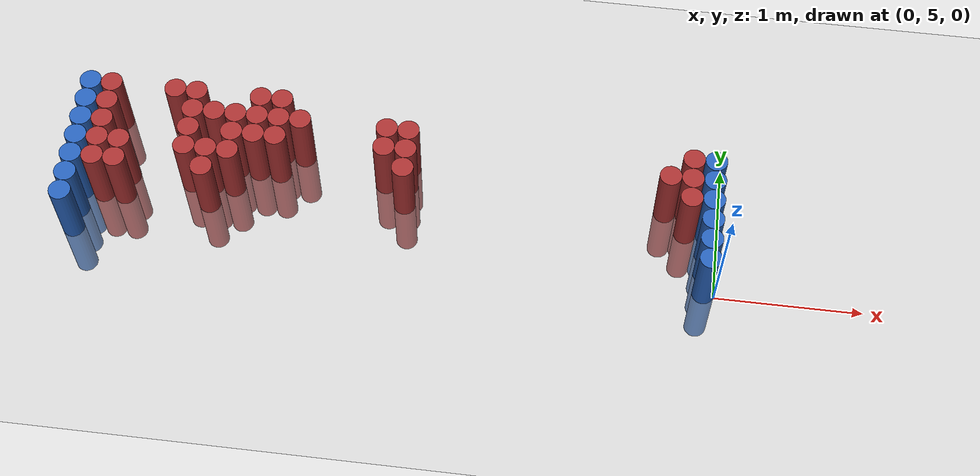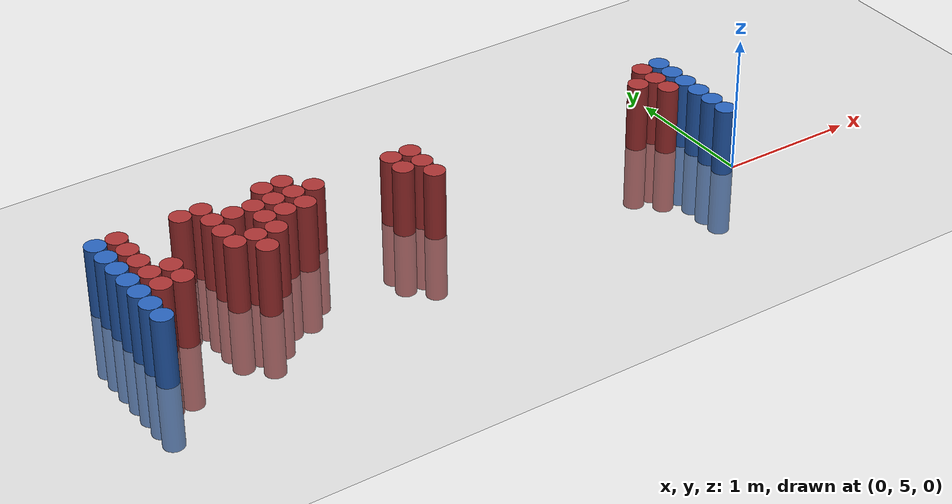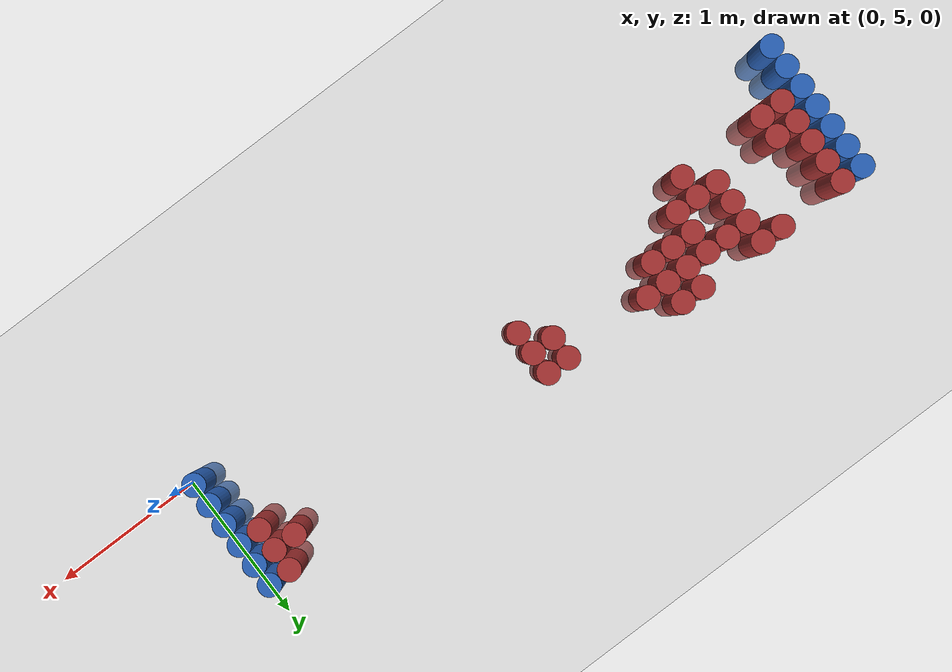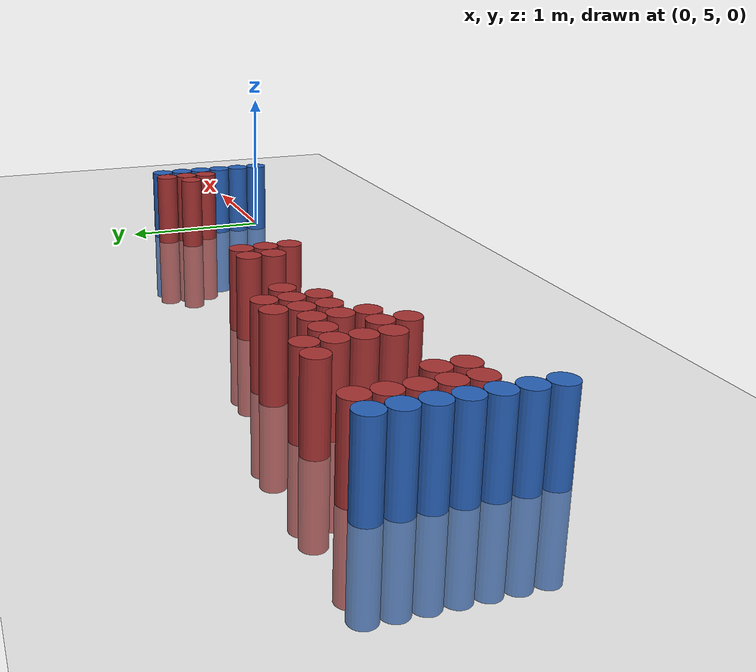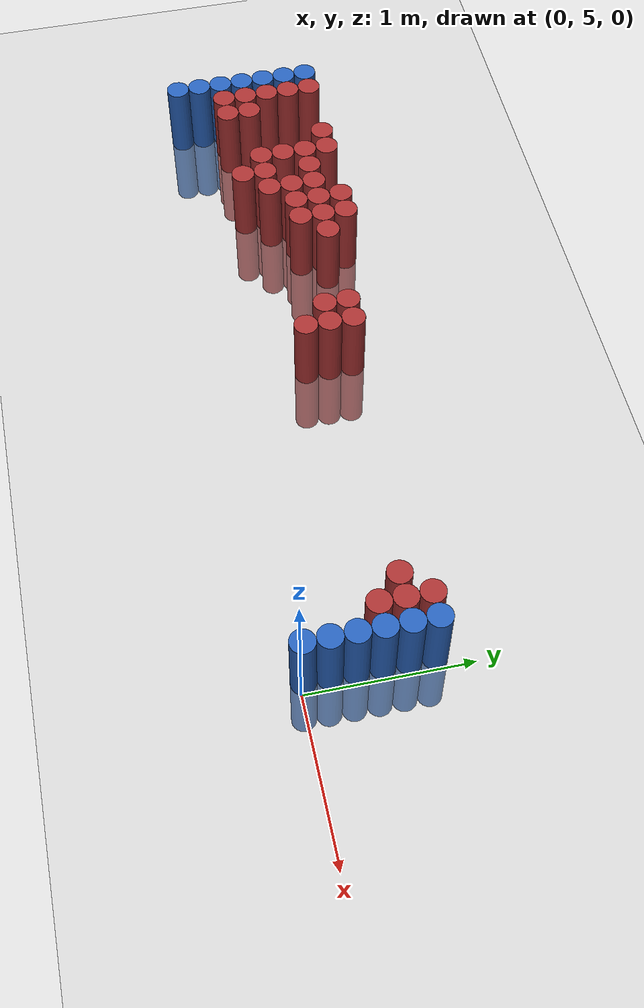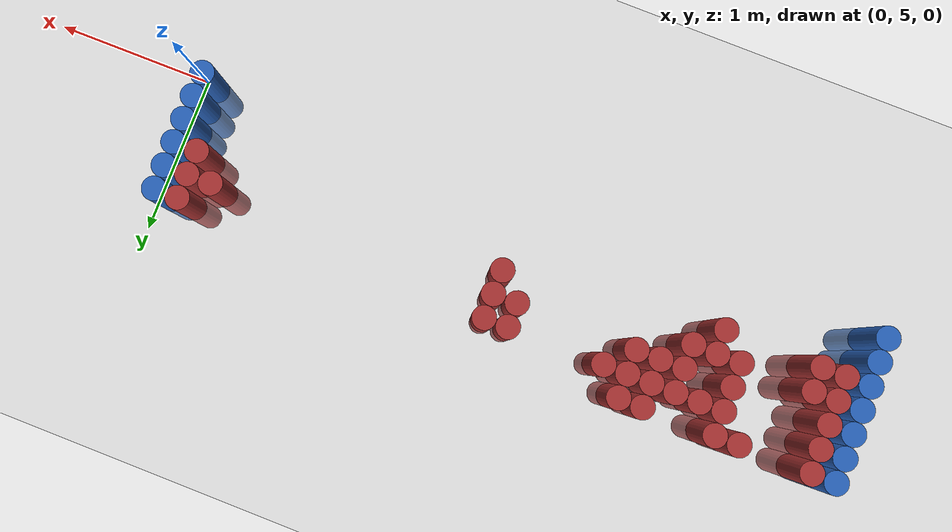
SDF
<sdf version="1.6">
 <world name="default">
  <model name="ground_plane">
   <static>1</static>
   <link name="link">
    <collision name="collision">
     <geometry><plane><normal>0 0 1</normal><size>100 100</size></plane></geometry>
     <surface><friction><ode><mu>100</mu><mu2>50</mu2></ode></friction></surface>
    </collision>
    <visual name="visual">
     <cast_shadows>0</cast_shadows>
     <geometry><plane><normal>0 0 1</normal><size>100 100</size></plane></geometry>
     <material>
      <script><uri>file://media/materials/scripts/gazebo.material</uri><name>Gazebo/Grey</name></script>
     </material>
    </visual>
   </link>
  </model>
  <model name="unit_cylinder_94">
   <static>1</static>
   <pose>-0.075000 5.025000 0.000000 0.000000 0.000000 0.000000</pose>
   <link name="link">
    <inertial>
     <mass>1</mass>
     <inertia><ixx>0.145833</ixx><ixy>0</ixy><ixz>0</ixz><iyy>0.145833</iyy><iyz>0</iyz><izz>0.125</izz></inertia>
    </inertial>
    <collision name="collision">
     <geometry><cylinder><radius>0.075000</radius><length>1</length></cylinder></geometry>
    </collision>
    <visual name="visual">
     <geometry><cylinder><radius>0.075000</radius><length>1</length></cylinder></geometry>
     <material>
      <ambient>0.152000 0.379000 0.720000 1</ambient>
      <diffuse>0.152000 0.379000 0.720000 1</diffuse>
     </material>
     <material>
      <script><name>Gazebo/Grey</name><uri>file://media/materials/scripts/gazebo.material</uri></script>
     </material>
    </visual>
   </link>
  </model>
  <model name="unit_cylinder_95">
   <static>1</static>
   <pose>-4.425000 5.025000 0.000000 0.000000 0.000000 0.000000</pose>
   <link name="link">
    <inertial>
     <mass>1</mass>
     <inertia><ixx>0.145833</ixx><ixy>0</ixy><ixz>0</ixz><iyy>0.145833</iyy><iyz>0</iyz><izz>0.125</izz></inertia>
    </inertial>
    <collision name="collision">
     <geometry><cylinder><radius>0.075000</radius><length>1</length></cylinder></geometry>
    </collision>
    <visual name="visual">
     <geometry><cylinder><radius>0.075000</radius><length>1</length></cylinder></geometry>
     <material>
      <ambient>0.152000 0.379000 0.720000 1</ambient>
      <diffuse>0.152000 0.379000 0.720000 1</diffuse>
     </material>
     <material>
      <script><name>Gazebo/Grey</name><uri>file://media/materials/scripts/gazebo.material</uri></script>
     </material>
    </visual>
   </link>
  </model>
  <model name="unit_cylinder_96">
   <static>1</static>
   <pose>-4.425000 5.175000 0.000000 0.000000 0.000000 0.000000</pose>
   <link name="link">
    <inertial>
     <mass>1</mass>
     <inertia><ixx>0.145833</ixx><ixy>0</ixy><ixz>0</ixz><iyy>0.145833</iyy><iyz>0</iyz><izz>0.125</izz></inertia>
    </inertial>
    <collision name="collision">
     <geometry><cylinder><radius>0.075000</radius><length>1</length></cylinder></geometry>
    </collision>
    <visual name="visual">
     <geometry><cylinder><radius>0.075000</radius><length>1</length></cylinder></geometry>
     <material>
      <ambient>0.152000 0.379000 0.720000 1</ambient>
      <diffuse>0.152000 0.379000 0.720000 1</diffuse>
     </material>
     <material>
      <script><name>Gazebo/Grey</name><uri>file://media/materials/scripts/gazebo.material</uri></script>
     </material>
    </visual>
   </link>
  </model>
  <model name="unit_cylinder_97">
   <static>1</static>
   <pose>-4.425000 5.325000 0.000000 0.000000 0.000000 0.000000</pose>
   <link name="link">
    <inertial>
     <mass>1</mass>
     <inertia><ixx>0.145833</ixx><ixy>0</ixy><ixz>0</ixz><iyy>0.145833</iyy><iyz>0</iyz><izz>0.125</izz></inertia>
    </inertial>
    <collision name="collision">
     <geometry><cylinder><radius>0.075000</radius><length>1</length></cylinder></geometry>
    </collision>
    <visual name="visual">
     <geometry><cylinder><radius>0.075000</radius><length>1</length></cylinder></geometry>
     <material>
      <ambient>0.152000 0.379000 0.720000 1</ambient>
      <diffuse>0.152000 0.379000 0.720000 1</diffuse>
     </material>
     <material>
      <script><name>Gazebo/Grey</name><uri>file://media/materials/scripts/gazebo.material</uri></script>
     </material>
    </visual>
   </link>
  </model>
  <model name="unit_cylinder_98">
   <static>1</static>
   <pose>-4.425000 5.475000 0.000000 0.000000 0.000000 0.000000</pose>
   <link name="link">
    <inertial>
     <mass>1</mass>
     <inertia><ixx>0.145833</ixx><ixy>0</ixy><ixz>0</ixz><iyy>0.145833</iyy><iyz>0</iyz><izz>0.125</izz></inertia>
    </inertial>
    <collision name="collision">
     <geometry><cylinder><radius>0.075000</radius><length>1</length></cylinder></geometry>
    </collision>
    <visual name="visual">
     <geometry><cylinder><radius>0.075000</radius><length>1</length></cylinder></geometry>
     <material>
      <ambient>0.152000 0.379000 0.720000 1</ambient>
      <diffuse>0.152000 0.379000 0.720000 1</diffuse>
     </material>
     <material>
      <script><name>Gazebo/Grey</name><uri>file://media/materials/scripts/gazebo.material</uri></script>
     </material>
    </visual>
   </link>
  </model>
  <model name="unit_cylinder_99">
   <static>1</static>
   <pose>-4.425000 5.625000 0.000000 0.000000 0.000000 0.000000</pose>
   <link name="link">
    <inertial>
     <mass>1</mass>
     <inertia><ixx>0.145833</ixx><ixy>0</ixy><ixz>0</ixz><iyy>0.145833</iyy><iyz>0</iyz><izz>0.125</izz></inertia>
    </inertial>
    <collision name="collision">
     <geometry><cylinder><radius>0.075000</radius><length>1</length></cylinder></geometry>
    </collision>
    <visual name="visual">
     <geometry><cylinder><radius>0.075000</radius><length>1</length></cylinder></geometry>
     <material>
      <ambient>0.152000 0.379000 0.720000 1</ambient>
      <diffuse>0.152000 0.379000 0.720000 1</diffuse>
     </material>
     <material>
      <script><name>Gazebo/Grey</name><uri>file://media/materials/scripts/gazebo.material</uri></script>
     </material>
    </visual>
   </link>
  </model>
  <model name="unit_cylinder_100">
   <static>1</static>
   <pose>-4.425000 5.775000 0.000000 0.000000 0.000000 0.000000</pose>
   <link name="link">
    <inertial>
     <mass>1</mass>
     <inertia><ixx>0.145833</ixx><ixy>0</ixy><ixz>0</ixz><iyy>0.145833</iyy><iyz>0</iyz><izz>0.125</izz></inertia>
    </inertial>
    <collision name="collision">
     <geometry><cylinder><radius>0.075000</radius><length>1</length></cylinder></geometry>
    </collision>
    <visual name="visual">
     <geometry><cylinder><radius>0.075000</radius><length>1</length></cylinder></geometry>
     <material>
      <ambient>0.152000 0.379000 0.720000 1</ambient>
      <diffuse>0.152000 0.379000 0.720000 1</diffuse>
     </material>
     <material>
      <script><name>Gazebo/Grey</name><uri>file://media/materials/scripts/gazebo.material</uri></script>
     </material>
    </visual>
   </link>
  </model>
  <model name="unit_cylinder_101">
   <static>1</static>
   <pose>-4.425000 5.925000 0.000000 0.000000 0.000000 0.000000</pose>
   <link name="link">
    <inertial>
     <mass>1</mass>
     <inertia><ixx>0.145833</ixx><ixy>0</ixy><ixz>0</ixz><iyy>0.145833</iyy><iyz>0</iyz><izz>0.125</izz></inertia>
    </inertial>
    <collision name="collision">
     <geometry><cylinder><radius>0.075000</radius><length>1</length></cylinder></geometry>
    </collision>
    <visual name="visual">
     <geometry><cylinder><radius>0.075000</radius><length>1</length></cylinder></geometry>
     <material>
      <ambient>0.152000 0.379000 0.720000 1</ambient>
      <diffuse>0.152000 0.379000 0.720000 1</diffuse>
     </material>
     <material>
      <script><name>Gazebo/Grey</name><uri>file://media/materials/scripts/gazebo.material</uri></script>
     </material>
    </visual>
   </link>
  </model>
  <model name="unit_cylinder_126">
   <static>1</static>
   <pose>-4.275000 5.325000 0.000000 0.000000 0.000000 0.000000</pose>
   <link name="link">
    <inertial>
     <mass>1</mass>
     <inertia><ixx>0.145833</ixx><ixy>0</ixy><ixz>0</ixz><iyy>0.145833</iyy><iyz>0</iyz><izz>0.125</izz></inertia>
    </inertial>
    <collision name="collision">
     <geometry><cylinder><radius>0.075000</radius><length>1</length></cylinder></geometry>
    </collision>
    <visual name="visual">
     <geometry><cylinder><radius>0.075000</radius><length>1</length></cylinder></geometry>
     <material>
      <ambient>0.648000 0.192000 0.192000 1</ambient>
      <diffuse>0.648000 0.192000 0.192000 1</diffuse>
     </material>
     <material>
      <script><name>Gazebo/Grey</name><uri>file://media/materials/scripts/gazebo.material</uri></script>
     </material>
    </visual>
   </link>
  </model>
  <model name="unit_cylinder_127">
   <static>1</static>
   <pose>-4.275000 5.475000 0.000000 0.000000 0.000000 0.000000</pose>
   <link name="link">
    <inertial>
     <mass>1</mass>
     <inertia><ixx>0.145833</ixx><ixy>0</ixy><ixz>0</ixz><iyy>0.145833</iyy><iyz>0</iyz><izz>0.125</izz></inertia>
    </inertial>
    <collision name="collision">
     <geometry><cylinder><radius>0.075000</radius><length>1</length></cylinder></geometry>
    </collision>
    <visual name="visual">
     <geometry><cylinder><radius>0.075000</radius><length>1</length></cylinder></geometry>
     <material>
      <ambient>0.648000 0.192000 0.192000 1</ambient>
      <diffuse>0.648000 0.192000 0.192000 1</diffuse>
     </material>
     <material>
      <script><name>Gazebo/Grey</name><uri>file://media/materials/scripts/gazebo.material</uri></script>
     </material>
    </visual>
   </link>
  </model>
  <model name="unit_cylinder_128">
   <static>1</static>
   <pose>-4.275000 5.625000 0.000000 0.000000 0.000000 0.000000</pose>
   <link name="link">
    <inertial>
     <mass>1</mass>
     <inertia><ixx>0.145833</ixx><ixy>0</ixy><ixz>0</ixz><iyy>0.145833</iyy><iyz>0</iyz><izz>0.125</izz></inertia>
    </inertial>
    <collision name="collision">
     <geometry><cylinder><radius>0.075000</radius><length>1</length></cylinder></geometry>
    </collision>
    <visual name="visual">
     <geometry><cylinder><radius>0.075000</radius><length>1</length></cylinder></geometry>
     <material>
      <ambient>0.648000 0.192000 0.192000 1</ambient>
      <diffuse>0.648000 0.192000 0.192000 1</diffuse>
     </material>
     <material>
      <script><name>Gazebo/Grey</name><uri>file://media/materials/scripts/gazebo.material</uri></script>
     </material>
    </visual>
   </link>
  </model>
  <model name="unit_cylinder_129">
   <static>1</static>
   <pose>-4.275000 5.775000 0.000000 0.000000 0.000000 0.000000</pose>
   <link name="link">
    <inertial>
     <mass>1</mass>
     <inertia><ixx>0.145833</ixx><ixy>0</ixy><ixz>0</ixz><iyy>0.145833</iyy><iyz>0</iyz><izz>0.125</izz></inertia>
    </inertial>
    <collision name="collision">
     <geometry><cylinder><radius>0.075000</radius><length>1</length></cylinder></geometry>
    </collision>
    <visual name="visual">
     <geometry><cylinder><radius>0.075000</radius><length>1</length></cylinder></geometry>
     <material>
      <ambient>0.648000 0.192000 0.192000 1</ambient>
      <diffuse>0.648000 0.192000 0.192000 1</diffuse>
     </material>
     <material>
      <script><name>Gazebo/Grey</name><uri>file://media/materials/scripts/gazebo.material</uri></script>
     </material>
    </visual>
   </link>
  </model>
  <model name="unit_cylinder_130">
   <static>1</static>
   <pose>-4.275000 5.925000 0.000000 0.000000 0.000000 0.000000</pose>
   <link name="link">
    <inertial>
     <mass>1</mass>
     <inertia><ixx>0.145833</ixx><ixy>0</ixy><ixz>0</ixz><iyy>0.145833</iyy><iyz>0</iyz><izz>0.125</izz></inertia>
    </inertial>
    <collision name="collision">
     <geometry><cylinder><radius>0.075000</radius><length>1</length></cylinder></geometry>
    </collision>
    <visual name="visual">
     <geometry><cylinder><radius>0.075000</radius><length>1</length></cylinder></geometry>
     <material>
      <ambient>0.648000 0.192000 0.192000 1</ambient>
      <diffuse>0.648000 0.192000 0.192000 1</diffuse>
     </material>
     <material>
      <script><name>Gazebo/Grey</name><uri>file://media/materials/scripts/gazebo.material</uri></script>
     </material>
    </visual>
   </link>
  </model>
  <model name="unit_cylinder_147">
   <static>1</static>
   <pose>-4.125000 5.325000 0.000000 0.000000 0.000000 0.000000</pose>
   <link name="link">
    <inertial>
     <mass>1</mass>
     <inertia><ixx>0.145833</ixx><ixy>0</ixy><ixz>0</ixz><iyy>0.145833</iyy><iyz>0</iyz><izz>0.125</izz></inertia>
    </inertial>
    <collision name="collision">
     <geometry><cylinder><radius>0.075000</radius><length>1</length></cylinder></geometry>
    </collision>
    <visual name="visual">
     <geometry><cylinder><radius>0.075000</radius><length>1</length></cylinder></geometry>
     <material>
      <ambient>0.648000 0.192000 0.192000 1</ambient>
      <diffuse>0.648000 0.192000 0.192000 1</diffuse>
     </material>
     <material>
      <script><name>Gazebo/Grey</name><uri>file://media/materials/scripts/gazebo.material</uri></script>
     </material>
    </visual>
   </link>
  </model>
  <model name="unit_cylinder_148">
   <static>1</static>
   <pose>-4.125000 5.475000 0.000000 0.000000 0.000000 0.000000</pose>
   <link name="link">
    <inertial>
     <mass>1</mass>
     <inertia><ixx>0.145833</ixx><ixy>0</ixy><ixz>0</ixz><iyy>0.145833</iyy><iyz>0</iyz><izz>0.125</izz></inertia>
    </inertial>
    <collision name="collision">
     <geometry><cylinder><radius>0.075000</radius><length>1</length></cylinder></geometry>
    </collision>
    <visual name="visual">
     <geometry><cylinder><radius>0.075000</radius><length>1</length></cylinder></geometry>
     <material>
      <ambient>0.648000 0.192000 0.192000 1</ambient>
      <diffuse>0.648000 0.192000 0.192000 1</diffuse>
     </material>
     <material>
      <script><name>Gazebo/Grey</name><uri>file://media/materials/scripts/gazebo.material</uri></script>
     </material>
    </visual>
   </link>
  </model>
  <model name="unit_cylinder_157">
   <static>1</static>
   <pose>-3.825000 5.925000 0.000000 0.000000 0.000000 0.000000</pose>
   <link name="link">
    <inertial>
     <mass>1</mass>
     <inertia><ixx>0.145833</ixx><ixy>0</ixy><ixz>0</ixz><iyy>0.145833</iyy><iyz>0</iyz><izz>0.125</izz></inertia>
    </inertial>
    <collision name="collision">
     <geometry><cylinder><radius>0.075000</radius><length>1</length></cylinder></geometry>
    </collision>
    <visual name="visual">
     <geometry><cylinder><radius>0.075000</radius><length>1</length></cylinder></geometry>
     <material>
      <ambient>0.648000 0.192000 0.192000 1</ambient>
      <diffuse>0.648000 0.192000 0.192000 1</diffuse>
     </material>
     <material>
      <script><name>Gazebo/Grey</name><uri>file://media/materials/scripts/gazebo.material</uri></script>
     </material>
    </visual>
   </link>
  </model>
  <model name="unit_cylinder_161">
   <static>1</static>
   <pose>-3.675000 5.475000 0.000000 0.000000 0.000000 0.000000</pose>
   <link name="link">
    <inertial>
     <mass>1</mass>
     <inertia><ixx>0.145833</ixx><ixy>0</ixy><ixz>0</ixz><iyy>0.145833</iyy><iyz>0</iyz><izz>0.125</izz></inertia>
    </inertial>
    <collision name="collision">
     <geometry><cylinder><radius>0.075000</radius><length>1</length></cylinder></geometry>
    </collision>
    <visual name="visual">
     <geometry><cylinder><radius>0.075000</radius><length>1</length></cylinder></geometry>
     <material>
      <ambient>0.648000 0.192000 0.192000 1</ambient>
      <diffuse>0.648000 0.192000 0.192000 1</diffuse>
     </material>
     <material>
      <script><name>Gazebo/Grey</name><uri>file://media/materials/scripts/gazebo.material</uri></script>
     </material>
    </visual>
   </link>
  </model>
  <model name="unit_cylinder_162">
   <static>1</static>
   <pose>-3.675000 5.625000 0.000000 0.000000 0.000000 0.000000</pose>
   <link name="link">
    <inertial>
     <mass>1</mass>
     <inertia><ixx>0.145833</ixx><ixy>0</ixy><ixz>0</ixz><iyy>0.145833</iyy><iyz>0</iyz><izz>0.125</izz></inertia>
    </inertial>
    <collision name="collision">
     <geometry><cylinder><radius>0.075000</radius><length>1</length></cylinder></geometry>
    </collision>
    <visual name="visual">
     <geometry><cylinder><radius>0.075000</radius><length>1</length></cylinder></geometry>
     <material>
      <ambient>0.648000 0.192000 0.192000 1</ambient>
      <diffuse>0.648000 0.192000 0.192000 1</diffuse>
     </material>
     <material>
      <script><name>Gazebo/Grey</name><uri>file://media/materials/scripts/gazebo.material</uri></script>
     </material>
    </visual>
   </link>
  </model>
  <model name="unit_cylinder_163">
   <static>1</static>
   <pose>-3.675000 5.775000 0.000000 0.000000 0.000000 0.000000</pose>
   <link name="link">
    <inertial>
     <mass>1</mass>
     <inertia><ixx>0.145833</ixx><ixy>0</ixy><ixz>0</ixz><iyy>0.145833</iyy><iyz>0</iyz><izz>0.125</izz></inertia>
    </inertial>
    <collision name="collision">
     <geometry><cylinder><radius>0.075000</radius><length>1</length></cylinder></geometry>
    </collision>
    <visual name="visual">
     <geometry><cylinder><radius>0.075000</radius><length>1</length></cylinder></geometry>
     <material>
      <ambient>0.648000 0.192000 0.192000 1</ambient>
      <diffuse>0.648000 0.192000 0.192000 1</diffuse>
     </material>
     <material>
      <script><name>Gazebo/Grey</name><uri>file://media/materials/scripts/gazebo.material</uri></script>
     </material>
    </visual>
   </link>
  </model>
  <model name="unit_cylinder_164">
   <static>1</static>
   <pose>-3.675000 5.925000 0.000000 0.000000 0.000000 0.000000</pose>
   <link name="link">
    <inertial>
     <mass>1</mass>
     <inertia><ixx>0.145833</ixx><ixy>0</ixy><ixz>0</ixz><iyy>0.145833</iyy><iyz>0</iyz><izz>0.125</izz></inertia>
    </inertial>
    <collision name="collision">
     <geometry><cylinder><radius>0.075000</radius><length>1</length></cylinder></geometry>
    </collision>
    <visual name="visual">
     <geometry><cylinder><radius>0.075000</radius><length>1</length></cylinder></geometry>
     <material>
      <ambient>0.648000 0.192000 0.192000 1</ambient>
      <diffuse>0.648000 0.192000 0.192000 1</diffuse>
     </material>
     <material>
      <script><name>Gazebo/Grey</name><uri>file://media/materials/scripts/gazebo.material</uri></script>
     </material>
    </visual>
   </link>
  </model>
  <model name="unit_cylinder_172">
   <static>1</static>
   <pose>-3.525000 5.325000 0.000000 0.000000 0.000000 0.000000</pose>
   <link name="link">
    <inertial>
     <mass>1</mass>
     <inertia><ixx>0.145833</ixx><ixy>0</ixy><ixz>0</ixz><iyy>0.145833</iyy><iyz>0</iyz><izz>0.125</izz></inertia>
    </inertial>
    <collision name="collision">
     <geometry><cylinder><radius>0.075000</radius><length>1</length></cylinder></geometry>
    </collision>
    <visual name="visual">
     <geometry><cylinder><radius>0.075000</radius><length>1</length></cylinder></geometry>
     <material>
      <ambient>0.648000 0.192000 0.192000 1</ambient>
      <diffuse>0.648000 0.192000 0.192000 1</diffuse>
     </material>
     <material>
      <script><name>Gazebo/Grey</name><uri>file://media/materials/scripts/gazebo.material</uri></script>
     </material>
    </visual>
   </link>
  </model>
  <model name="unit_cylinder_173">
   <static>1</static>
   <pose>-3.525000 5.475000 0.000000 0.000000 0.000000 0.000000</pose>
   <link name="link">
    <inertial>
     <mass>1</mass>
     <inertia><ixx>0.145833</ixx><ixy>0</ixy><ixz>0</ixz><iyy>0.145833</iyy><iyz>0</iyz><izz>0.125</izz></inertia>
    </inertial>
    <collision name="collision">
     <geometry><cylinder><radius>0.075000</radius><length>1</length></cylinder></geometry>
    </collision>
    <visual name="visual">
     <geometry><cylinder><radius>0.075000</radius><length>1</length></cylinder></geometry>
     <material>
      <ambient>0.648000 0.192000 0.192000 1</ambient>
      <diffuse>0.648000 0.192000 0.192000 1</diffuse>
     </material>
     <material>
      <script><name>Gazebo/Grey</name><uri>file://media/materials/scripts/gazebo.material</uri></script>
     </material>
    </visual>
   </link>
  </model>
  <model name="unit_cylinder_174">
   <static>1</static>
   <pose>-3.525000 5.775000 0.000000 0.000000 0.000000 0.000000</pose>
   <link name="link">
    <inertial>
     <mass>1</mass>
     <inertia><ixx>0.145833</ixx><ixy>0</ixy><ixz>0</ixz><iyy>0.145833</iyy><iyz>0</iyz><izz>0.125</izz></inertia>
    </inertial>
    <collision name="collision">
     <geometry><cylinder><radius>0.075000</radius><length>1</length></cylinder></geometry>
    </collision>
    <visual name="visual">
     <geometry><cylinder><radius>0.075000</radius><length>1</length></cylinder></geometry>
     <material>
      <ambient>0.648000 0.192000 0.192000 1</ambient>
      <diffuse>0.648000 0.192000 0.192000 1</diffuse>
     </material>
     <material>
      <script><name>Gazebo/Grey</name><uri>file://media/materials/scripts/gazebo.material</uri></script>
     </material>
    </visual>
   </link>
  </model>
  <model name="unit_cylinder_179">
   <static>1</static>
   <pose>-3.375000 5.475000 0.000000 0.000000 0.000000 0.000000</pose>
   <link name="link">
    <inertial>
     <mass>1</mass>
     <inertia><ixx>0.145833</ixx><ixy>0</ixy><ixz>0</ixz><iyy>0.145833</iyy><iyz>0</iyz><izz>0.125</izz></inertia>
    </inertial>
    <collision name="collision">
     <geometry><cylinder><radius>0.075000</radius><length>1</length></cylinder></geometry>
    </collision>
    <visual name="visual">
     <geometry><cylinder><radius>0.075000</radius><length>1</length></cylinder></geometry>
     <material>
      <ambient>0.648000 0.192000 0.192000 1</ambient>
      <diffuse>0.648000 0.192000 0.192000 1</diffuse>
     </material>
     <material>
      <script><name>Gazebo/Grey</name><uri>file://media/materials/scripts/gazebo.material</uri></script>
     </material>
    </visual>
   </link>
  </model>
  <model name="unit_cylinder_180">
   <static>1</static>
   <pose>-3.375000 5.625000 0.000000 0.000000 0.000000 0.000000</pose>
   <link name="link">
    <inertial>
     <mass>1</mass>
     <inertia><ixx>0.145833</ixx><ixy>0</ixy><ixz>0</ixz><iyy>0.145833</iyy><iyz>0</iyz><izz>0.125</izz></inertia>
    </inertial>
    <collision name="collision">
     <geometry><cylinder><radius>0.075000</radius><length>1</length></cylinder></geometry>
    </collision>
    <visual name="visual">
     <geometry><cylinder><radius>0.075000</radius><length>1</length></cylinder></geometry>
     <material>
      <ambient>0.648000 0.192000 0.192000 1</ambient>
      <diffuse>0.648000 0.192000 0.192000 1</diffuse>
     </material>
     <material>
      <script><name>Gazebo/Grey</name><uri>file://media/materials/scripts/gazebo.material</uri></script>
     </material>
    </visual>
   </link>
  </model>
  <model name="unit_cylinder_181">
   <static>1</static>
   <pose>-3.375000 5.775000 0.000000 0.000000 0.000000 0.000000</pose>
   <link name="link">
    <inertial>
     <mass>1</mass>
     <inertia><ixx>0.145833</ixx><ixy>0</ixy><ixz>0</ixz><iyy>0.145833</iyy><iyz>0</iyz><izz>0.125</izz></inertia>
    </inertial>
    <collision name="collision">
     <geometry><cylinder><radius>0.075000</radius><length>1</length></cylinder></geometry>
    </collision>
    <visual name="visual">
     <geometry><cylinder><radius>0.075000</radius><length>1</length></cylinder></geometry>
     <material>
      <ambient>0.648000 0.192000 0.192000 1</ambient>
      <diffuse>0.648000 0.192000 0.192000 1</diffuse>
     </material>
     <material>
      <script><name>Gazebo/Grey</name><uri>file://media/materials/scripts/gazebo.material</uri></script>
     </material>
    </visual>
   </link>
  </model>
  <model name="unit_cylinder_188">
   <static>1</static>
   <pose>-3.225000 5.625000 0.000000 0.000000 0.000000 0.000000</pose>
   <link name="link">
    <inertial>
     <mass>1</mass>
     <inertia><ixx>0.145833</ixx><ixy>0</ixy><ixz>0</ixz><iyy>0.145833</iyy><iyz>0</iyz><izz>0.125</izz></inertia>
    </inertial>
    <collision name="collision">
     <geometry><cylinder><radius>0.075000</radius><length>1</length></cylinder></geometry>
    </collision>
    <visual name="visual">
     <geometry><cylinder><radius>0.075000</radius><length>1</length></cylinder></geometry>
     <material>
      <ambient>0.648000 0.192000 0.192000 1</ambient>
      <diffuse>0.648000 0.192000 0.192000 1</diffuse>
     </material>
     <material>
      <script><name>Gazebo/Grey</name><uri>file://media/materials/scripts/gazebo.material</uri></script>
     </material>
    </visual>
   </link>
  </model>
  <model name="unit_cylinder_189">
   <static>1</static>
   <pose>-3.225000 5.775000 0.000000 0.000000 0.000000 0.000000</pose>
   <link name="link">
    <inertial>
     <mass>1</mass>
     <inertia><ixx>0.145833</ixx><ixy>0</ixy><ixz>0</ixz><iyy>0.145833</iyy><iyz>0</iyz><izz>0.125</izz></inertia>
    </inertial>
    <collision name="collision">
     <geometry><cylinder><radius>0.075000</radius><length>1</length></cylinder></geometry>
    </collision>
    <visual name="visual">
     <geometry><cylinder><radius>0.075000</radius><length>1</length></cylinder></geometry>
     <material>
      <ambient>0.648000 0.192000 0.192000 1</ambient>
      <diffuse>0.648000 0.192000 0.192000 1</diffuse>
     </material>
     <material>
      <script><name>Gazebo/Grey</name><uri>file://media/materials/scripts/gazebo.material</uri></script>
     </material>
    </visual>
   </link>
  </model>
  <model name="unit_cylinder_190">
   <static>1</static>
   <pose>-3.225000 5.925000 0.000000 0.000000 0.000000 0.000000</pose>
   <link name="link">
    <inertial>
     <mass>1</mass>
     <inertia><ixx>0.145833</ixx><ixy>0</ixy><ixz>0</ixz><iyy>0.145833</iyy><iyz>0</iyz><izz>0.125</izz></inertia>
    </inertial>
    <collision name="collision">
     <geometry><cylinder><radius>0.075000</radius><length>1</length></cylinder></geometry>
    </collision>
    <visual name="visual">
     <geometry><cylinder><radius>0.075000</radius><length>1</length></cylinder></geometry>
     <material>
      <ambient>0.648000 0.192000 0.192000 1</ambient>
      <diffuse>0.648000 0.192000 0.192000 1</diffuse>
     </material>
     <material>
      <script><name>Gazebo/Grey</name><uri>file://media/materials/scripts/gazebo.material</uri></script>
     </material>
    </visual>
   </link>
  </model>
  <model name="unit_cylinder_201">
   <static>1</static>
   <pose>-3.075000 5.625000 0.000000 0.000000 0.000000 0.000000</pose>
   <link name="link">
    <inertial>
     <mass>1</mass>
     <inertia><ixx>0.145833</ixx><ixy>0</ixy><ixz>0</ixz><iyy>0.145833</iyy><iyz>0</iyz><izz>0.125</izz></inertia>
    </inertial>
    <collision name="collision">
     <geometry><cylinder><radius>0.075000</radius><length>1</length></cylinder></geometry>
    </collision>
    <visual name="visual">
     <geometry><cylinder><radius>0.075000</radius><length>1</length></cylinder></geometry>
     <material>
      <ambient>0.648000 0.192000 0.192000 1</ambient>
      <diffuse>0.648000 0.192000 0.192000 1</diffuse>
     </material>
     <material>
      <script><name>Gazebo/Grey</name><uri>file://media/materials/scripts/gazebo.material</uri></script>
     </material>
    </visual>
   </link>
  </model>
  <model name="unit_cylinder_202">
   <static>1</static>
   <pose>-3.075000 5.775000 0.000000 0.000000 0.000000 0.000000</pose>
   <link name="link">
    <inertial>
     <mass>1</mass>
     <inertia><ixx>0.145833</ixx><ixy>0</ixy><ixz>0</ixz><iyy>0.145833</iyy><iyz>0</iyz><izz>0.125</izz></inertia>
    </inertial>
    <collision name="collision">
     <geometry><cylinder><radius>0.075000</radius><length>1</length></cylinder></geometry>
    </collision>
    <visual name="visual">
     <geometry><cylinder><radius>0.075000</radius><length>1</length></cylinder></geometry>
     <material>
      <ambient>0.648000 0.192000 0.192000 1</ambient>
      <diffuse>0.648000 0.192000 0.192000 1</diffuse>
     </material>
     <material>
      <script><name>Gazebo/Grey</name><uri>file://media/materials/scripts/gazebo.material</uri></script>
     </material>
    </visual>
   </link>
  </model>
  <model name="unit_cylinder_203">
   <static>1</static>
   <pose>-3.075000 5.925000 0.000000 0.000000 0.000000 0.000000</pose>
   <link name="link">
    <inertial>
     <mass>1</mass>
     <inertia><ixx>0.145833</ixx><ixy>0</ixy><ixz>0</ixz><iyy>0.145833</iyy><iyz>0</iyz><izz>0.125</izz></inertia>
    </inertial>
    <collision name="collision">
     <geometry><cylinder><radius>0.075000</radius><length>1</length></cylinder></geometry>
    </collision>
    <visual name="visual">
     <geometry><cylinder><radius>0.075000</radius><length>1</length></cylinder></geometry>
     <material>
      <ambient>0.648000 0.192000 0.192000 1</ambient>
      <diffuse>0.648000 0.192000 0.192000 1</diffuse>
     </material>
     <material>
      <script><name>Gazebo/Grey</name><uri>file://media/materials/scripts/gazebo.material</uri></script>
     </material>
    </visual>
   </link>
  </model>
  <model name="unit_cylinder_211">
   <static>1</static>
   <pose>-2.925000 5.775000 0.000000 0.000000 0.000000 0.000000</pose>
   <link name="link">
    <inertial>
     <mass>1</mass>
     <inertia><ixx>0.145833</ixx><ixy>0</ixy><ixz>0</ixz><iyy>0.145833</iyy><iyz>0</iyz><izz>0.125</izz></inertia>
    </inertial>
    <collision name="collision">
     <geometry><cylinder><radius>0.075000</radius><length>1</length></cylinder></geometry>
    </collision>
    <visual name="visual">
     <geometry><cylinder><radius>0.075000</radius><length>1</length></cylinder></geometry>
     <material>
      <ambient>0.648000 0.192000 0.192000 1</ambient>
      <diffuse>0.648000 0.192000 0.192000 1</diffuse>
     </material>
     <material>
      <script><name>Gazebo/Grey</name><uri>file://media/materials/scripts/gazebo.material</uri></script>
     </material>
    </visual>
   </link>
  </model>
  <model name="unit_cylinder_231">
   <static>1</static>
   <pose>-2.325000 5.625000 0.000000 0.000000 0.000000 0.000000</pose>
   <link name="link">
    <inertial>
     <mass>1</mass>
     <inertia><ixx>0.145833</ixx><ixy>0</ixy><ixz>0</ixz><iyy>0.145833</iyy><iyz>0</iyz><izz>0.125</izz></inertia>
    </inertial>
    <collision name="collision">
     <geometry><cylinder><radius>0.075000</radius><length>1</length></cylinder></geometry>
    </collision>
    <visual name="visual">
     <geometry><cylinder><radius>0.075000</radius><length>1</length></cylinder></geometry>
     <material>
      <ambient>0.648000 0.192000 0.192000 1</ambient>
      <diffuse>0.648000 0.192000 0.192000 1</diffuse>
     </material>
     <material>
      <script><name>Gazebo/Grey</name><uri>file://media/materials/scripts/gazebo.material</uri></script>
     </material>
    </visual>
   </link>
  </model>
  <model name="unit_cylinder_232">
   <static>1</static>
   <pose>-2.325000 5.775000 0.000000 0.000000 0.000000 0.000000</pose>
   <link name="link">
    <inertial>
     <mass>1</mass>
     <inertia><ixx>0.145833</ixx><ixy>0</ixy><ixz>0</ixz><iyy>0.145833</iyy><iyz>0</iyz><izz>0.125</izz></inertia>
    </inertial>
    <collision name="collision">
     <geometry><cylinder><radius>0.075000</radius><length>1</length></cylinder></geometry>
    </collision>
    <visual name="visual">
     <geometry><cylinder><radius>0.075000</radius><length>1</length></cylinder></geometry>
     <material>
      <ambient>0.648000 0.192000 0.192000 1</ambient>
      <diffuse>0.648000 0.192000 0.192000 1</diffuse>
     </material>
     <material>
      <script><name>Gazebo/Grey</name><uri>file://media/materials/scripts/gazebo.material</uri></script>
     </material>
    </visual>
   </link>
  </model>
  <model name="unit_cylinder_236">
   <static>1</static>
   <pose>-2.175000 5.475000 0.000000 0.000000 0.000000 0.000000</pose>
   <link name="link">
    <inertial>
     <mass>1</mass>
     <inertia><ixx>0.145833</ixx><ixy>0</ixy><ixz>0</ixz><iyy>0.145833</iyy><iyz>0</iyz><izz>0.125</izz></inertia>
    </inertial>
    <collision name="collision">
     <geometry><cylinder><radius>0.075000</radius><length>1</length></cylinder></geometry>
    </collision>
    <visual name="visual">
     <geometry><cylinder><radius>0.075000</radius><length>1</length></cylinder></geometry>
     <material>
      <ambient>0.648000 0.192000 0.192000 1</ambient>
      <diffuse>0.648000 0.192000 0.192000 1</diffuse>
     </material>
     <material>
      <script><name>Gazebo/Grey</name><uri>file://media/materials/scripts/gazebo.material</uri></script>
     </material>
    </visual>
   </link>
  </model>
  <model name="unit_cylinder_237">
   <static>1</static>
   <pose>-2.175000 5.625000 0.000000 0.000000 0.000000 0.000000</pose>
   <link name="link">
    <inertial>
     <mass>1</mass>
     <inertia><ixx>0.145833</ixx><ixy>0</ixy><ixz>0</ixz><iyy>0.145833</iyy><iyz>0</iyz><izz>0.125</izz></inertia>
    </inertial>
    <collision name="collision">
     <geometry><cylinder><radius>0.075000</radius><length>1</length></cylinder></geometry>
    </collision>
    <visual name="visual">
     <geometry><cylinder><radius>0.075000</radius><length>1</length></cylinder></geometry>
     <material>
      <ambient>0.648000 0.192000 0.192000 1</ambient>
      <diffuse>0.648000 0.192000 0.192000 1</diffuse>
     </material>
     <material>
      <script><name>Gazebo/Grey</name><uri>file://media/materials/scripts/gazebo.material</uri></script>
     </material>
    </visual>
   </link>
  </model>
  <model name="unit_cylinder_238">
   <static>1</static>
   <pose>-2.175000 5.775000 0.000000 0.000000 0.000000 0.000000</pose>
   <link name="link">
    <inertial>
     <mass>1</mass>
     <inertia><ixx>0.145833</ixx><ixy>0</ixy><ixz>0</ixz><iyy>0.145833</iyy><iyz>0</iyz><izz>0.125</izz></inertia>
    </inertial>
    <collision name="collision">
     <geometry><cylinder><radius>0.075000</radius><length>1</length></cylinder></geometry>
    </collision>
    <visual name="visual">
     <geometry><cylinder><radius>0.075000</radius><length>1</length></cylinder></geometry>
     <material>
      <ambient>0.648000 0.192000 0.192000 1</ambient>
      <diffuse>0.648000 0.192000 0.192000 1</diffuse>
     </material>
     <material>
      <script><name>Gazebo/Grey</name><uri>file://media/materials/scripts/gazebo.material</uri></script>
     </material>
    </visual>
   </link>
  </model>
  <model name="unit_cylinder_273">
   <static>1</static>
   <pose>-0.375000 5.625000 0.000000 0.000000 0.000000 0.000000</pose>
   <link name="link">
    <inertial>
     <mass>1</mass>
     <inertia><ixx>0.145833</ixx><ixy>0</ixy><ixz>0</ixz><iyy>0.145833</iyy><iyz>0</iyz><izz>0.125</izz></inertia>
    </inertial>
    <collision name="collision">
     <geometry><cylinder><radius>0.075000</radius><length>1</length></cylinder></geometry>
    </collision>
    <visual name="visual">
     <geometry><cylinder><radius>0.075000</radius><length>1</length></cylinder></geometry>
     <material>
      <ambient>0.648000 0.192000 0.192000 1</ambient>
      <diffuse>0.648000 0.192000 0.192000 1</diffuse>
     </material>
     <material>
      <script><name>Gazebo/Grey</name><uri>file://media/materials/scripts/gazebo.material</uri></script>
     </material>
    </visual>
   </link>
  </model>
  <model name="unit_cylinder_282">
   <static>1</static>
   <pose>-0.225000 5.475000 0.000000 0.000000 0.000000 0.000000</pose>
   <link name="link">
    <inertial>
     <mass>1</mass>
     <inertia><ixx>0.145833</ixx><ixy>0</ixy><ixz>0</ixz><iyy>0.145833</iyy><iyz>0</iyz><izz>0.125</izz></inertia>
    </inertial>
    <collision name="collision">
     <geometry><cylinder><radius>0.075000</radius><length>1</length></cylinder></geometry>
    </collision>
    <visual name="visual">
     <geometry><cylinder><radius>0.075000</radius><length>1</length></cylinder></geometry>
     <material>
      <ambient>0.648000 0.192000 0.192000 1</ambient>
      <diffuse>0.648000 0.192000 0.192000 1</diffuse>
     </material>
     <material>
      <script><name>Gazebo/Grey</name><uri>file://media/materials/scripts/gazebo.material</uri></script>
     </material>
    </visual>
   </link>
  </model>
  <model name="unit_cylinder_283">
   <static>1</static>
   <pose>-0.225000 5.625000 0.000000 0.000000 0.000000 0.000000</pose>
   <link name="link">
    <inertial>
     <mass>1</mass>
     <inertia><ixx>0.145833</ixx><ixy>0</ixy><ixz>0</ixz><iyy>0.145833</iyy><iyz>0</iyz><izz>0.125</izz></inertia>
    </inertial>
    <collision name="collision">
     <geometry><cylinder><radius>0.075000</radius><length>1</length></cylinder></geometry>
    </collision>
    <visual name="visual">
     <geometry><cylinder><radius>0.075000</radius><length>1</length></cylinder></geometry>
     <material>
      <ambient>0.648000 0.192000 0.192000 1</ambient>
      <diffuse>0.648000 0.192000 0.192000 1</diffuse>
     </material>
     <material>
      <script><name>Gazebo/Grey</name><uri>file://media/materials/scripts/gazebo.material</uri></script>
     </material>
    </visual>
   </link>
  </model>
  <model name="unit_cylinder_284">
   <static>1</static>
   <pose>-0.225000 5.775000 0.000000 0.000000 0.000000 0.000000</pose>
   <link name="link">
    <inertial>
     <mass>1</mass>
     <inertia><ixx>0.145833</ixx><ixy>0</ixy><ixz>0</ixz><iyy>0.145833</iyy><iyz>0</iyz><izz>0.125</izz></inertia>
    </inertial>
    <collision name="collision">
     <geometry><cylinder><radius>0.075000</radius><length>1</length></cylinder></geometry>
    </collision>
    <visual name="visual">
     <geometry><cylinder><radius>0.075000</radius><length>1</length></cylinder></geometry>
     <material>
      <ambient>0.648000 0.192000 0.192000 1</ambient>
      <diffuse>0.648000 0.192000 0.192000 1</diffuse>
     </material>
     <material>
      <script><name>Gazebo/Grey</name><uri>file://media/materials/scripts/gazebo.material</uri></script>
     </material>
    </visual>
   </link>
  </model>
  <model name="unit_cylinder_299">
   <static>1</static>
   <pose>-0.075000 5.175000 0.000000 0.000000 0.000000 0.000000</pose>
   <link name="link">
    <inertial>
     <mass>1</mass>
     <inertia><ixx>0.145833</ixx><ixy>0</ixy><ixz>0</ixz><iyy>0.145833</iyy><iyz>0</iyz><izz>0.125</izz></inertia>
    </inertial>
    <collision name="collision">
     <geometry><cylinder><radius>0.075000</radius><length>1</length></cylinder></geometry>
    </collision>
    <visual name="visual">
     <geometry><cylinder><radius>0.075000</radius><length>1</length></cylinder></geometry>
     <material>
      <ambient>0.152000 0.379000 0.720000 1</ambient>
      <diffuse>0.152000 0.379000 0.720000 1</diffuse>
     </material>
     <material>
      <script><name>Gazebo/Grey</name><uri>file://media/materials/scripts/gazebo.material</uri></script>
     </material>
    </visual>
   </link>
  </model>
  <model name="unit_cylinder_300">
   <static>1</static>
   <pose>-0.075000 5.325000 0.000000 0.000000 0.000000 0.000000</pose>
   <link name="link">
    <inertial>
     <mass>1</mass>
     <inertia><ixx>0.145833</ixx><ixy>0</ixy><ixz>0</ixz><iyy>0.145833</iyy><iyz>0</iyz><izz>0.125</izz></inertia>
    </inertial>
    <collision name="collision">
     <geometry><cylinder><radius>0.075000</radius><length>1</length></cylinder></geometry>
    </collision>
    <visual name="visual">
     <geometry><cylinder><radius>0.075000</radius><length>1</length></cylinder></geometry>
     <material>
      <ambient>0.152000 0.379000 0.720000 1</ambient>
      <diffuse>0.152000 0.379000 0.720000 1</diffuse>
     </material>
     <material>
      <script><name>Gazebo/Grey</name><uri>file://media/materials/scripts/gazebo.material</uri></script>
     </material>
    </visual>
   </link>
  </model>
  <model name="unit_cylinder_301">
   <static>1</static>
   <pose>-0.075000 5.475000 0.000000 0.000000 0.000000 0.000000</pose>
   <link name="link">
    <inertial>
     <mass>1</mass>
     <inertia><ixx>0.145833</ixx><ixy>0</ixy><ixz>0</ixz><iyy>0.145833</iyy><iyz>0</iyz><izz>0.125</izz></inertia>
    </inertial>
    <collision name="collision">
     <geometry><cylinder><radius>0.075000</radius><length>1</length></cylinder></geometry>
    </collision>
    <visual name="visual">
     <geometry><cylinder><radius>0.075000</radius><length>1</length></cylinder></geometry>
     <material>
      <ambient>0.152000 0.379000 0.720000 1</ambient>
      <diffuse>0.152000 0.379000 0.720000 1</diffuse>
     </material>
     <material>
      <script><name>Gazebo/Grey</name><uri>file://media/materials/scripts/gazebo.material</uri></script>
     </material>
    </visual>
   </link>
  </model>
  <model name="unit_cylinder_302">
   <static>1</static>
   <pose>-0.075000 5.625000 0.000000 0.000000 0.000000 0.000000</pose>
   <link name="link">
    <inertial>
     <mass>1</mass>
     <inertia><ixx>0.145833</ixx><ixy>0</ixy><ixz>0</ixz><iyy>0.145833</iyy><iyz>0</iyz><izz>0.125</izz></inertia>
    </inertial>
    <collision name="collision">
     <geometry><cylinder><radius>0.075000</radius><length>1</length></cylinder></geometry>
    </collision>
    <visual name="visual">
     <geometry><cylinder><radius>0.075000</radius><length>1</length></cylinder></geometry>
     <material>
      <ambient>0.152000 0.379000 0.720000 1</ambient>
      <diffuse>0.152000 0.379000 0.720000 1</diffuse>
     </material>
     <material>
      <script><name>Gazebo/Grey</name><uri>file://media/materials/scripts/gazebo.material</uri></script>
     </material>
    </visual>
   </link>
  </model>
  <model name="unit_cylinder_303">
   <static>1</static>
   <pose>-0.075000 5.775000 0.000000 0.000000 0.000000 0.000000</pose>
   <link name="link">
    <inertial>
     <mass>1</mass>
     <inertia><ixx>0.145833</ixx><ixy>0</ixy><ixz>0</ixz><iyy>0.145833</iyy><iyz>0</iyz><izz>0.125</izz></inertia>
    </inertial>
    <collision name="collision">
     <geometry><cylinder><radius>0.075000</radius><length>1</length></cylinder></geometry>
    </collision>
    <visual name="visual">
     <geometry><cylinder><radius>0.075000</radius><length>1</length></cylinder></geometry>
     <material>
      <ambient>0.152000 0.379000 0.720000 1</ambient>
      <diffuse>0.152000 0.379000 0.720000 1</diffuse>
     </material>
     <material>
      <script><name>Gazebo/Grey</name><uri>file://media/materials/scripts/gazebo.material</uri></script>
     </material>
    </visual>
   </link>
  </model>
 </world>
</sdf>
